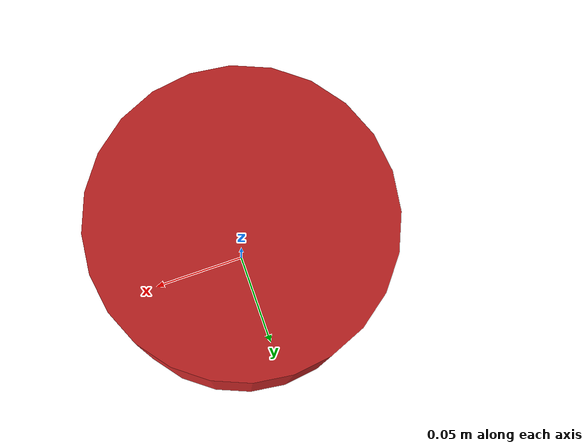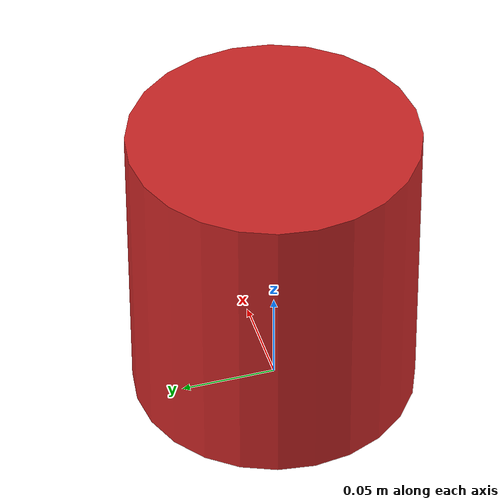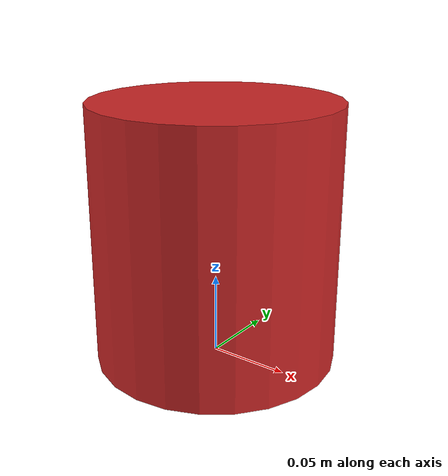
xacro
<?xml version="1.0" encoding="UTF-8"?>
<robot xmlns:xacro="http://www.ros.org/wiki/xacro" name="homebot">
    <xacro:include filename="$(find ros_homebot_description)/urdf/materials.urdf.xacro" />
    <!-- dimensions in meters -->
    <xacro:property name="torso_radius" value="0.075" /><!-- 150 mm diameter = 75 mm radius -->
    <xacro:property name="torso_height" value="0.16" /><!-- 160 mm height -->
    <xacro:property name="neck_height" value="0.015" />
    <xacro:property name="camera_radius" value="0.008" />
    <xacro:property name="camera_thickness" value="0.005" />
    <xacro:property name="M_PI" value="3.141592653589793" />
    <link name="base_link">
        <visual>
            <geometry>
                <cylinder length="${torso_height}" radius="${torso_radius}" />
            </geometry>
            <origin xyz="0 0 ${torso_height/2}" rpy="0 0 0" />
            <material name="red" />
        </visual>
    </link>
</robot>
